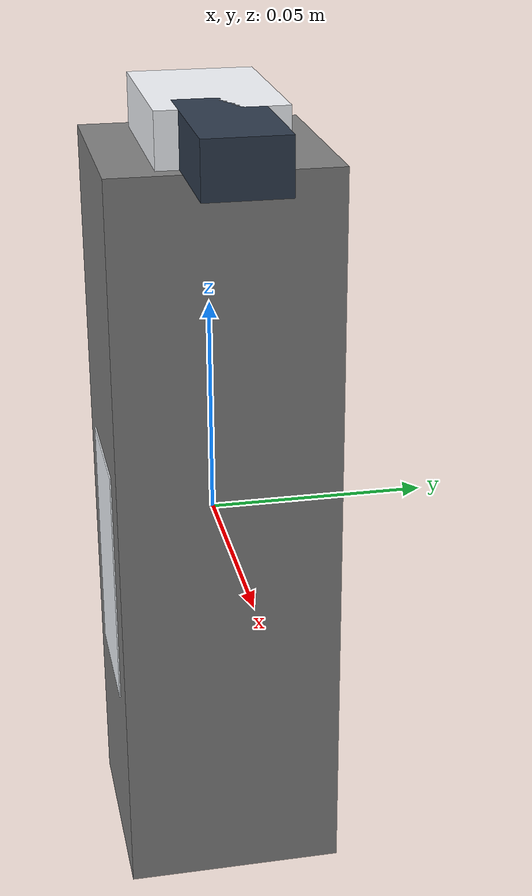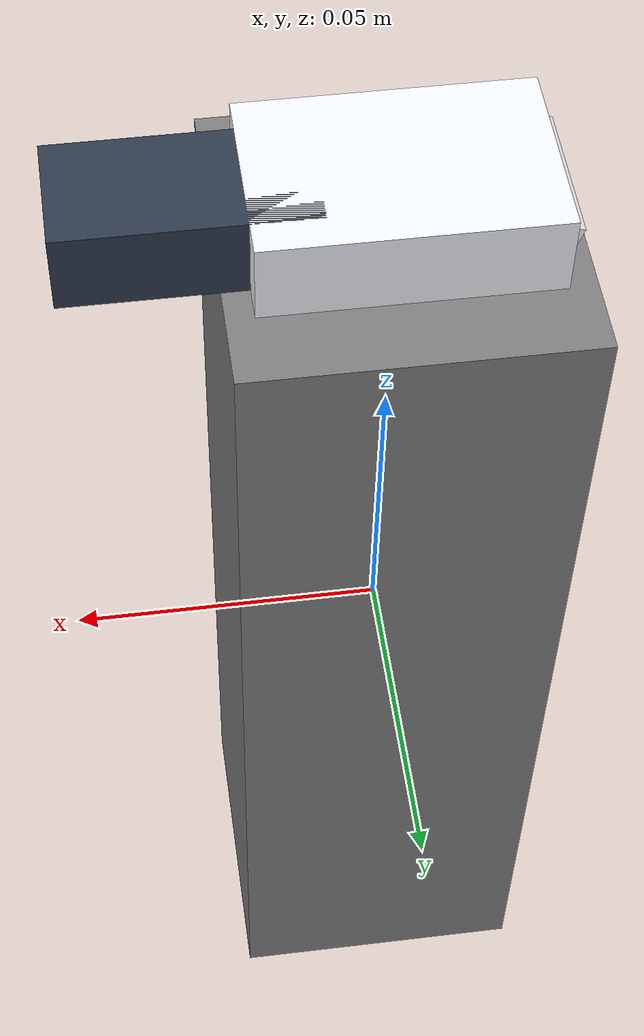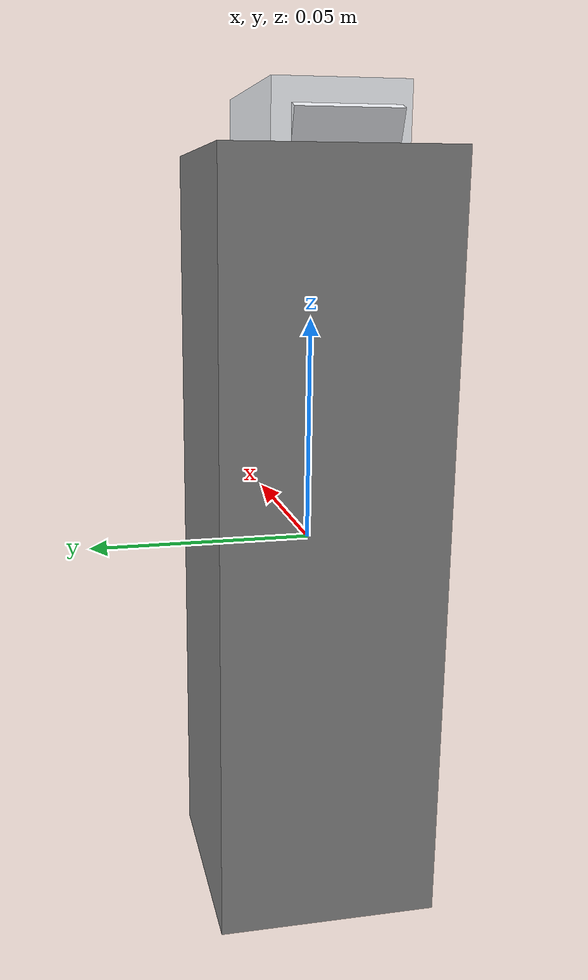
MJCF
<mujoco model="vla82_vla82_004">
  <compiler angle="radian"/>
  <asset>
    <texture name="source_texture" type="2d" file="source_texture.png"/>
    <material name="source_material" texture="source_texture" rgba="1 1 1 1"/>
  </asset>
  <default>
    <default class="visual"><geom contype="0" conaffinity="0" group="1" mass="0"/></default>
    <default class="collision"><geom contype="1" conaffinity="1" group="0" density="300" friction="0.7 0.006 0.0002" solref="0.02 1" solimp="0.9 0.95 0.001"/></default>
    <default class="region"><geom contype="0" conaffinity="0" group="1" rgba="0 1 0 0" mass="0"/></default>
  </default>
  <worldbody><body><body name="object">
    <geom name="spray_bottle_body" class="visual" type="cylinder" pos="0 0 -0.014" size="0.024 0.068" rgba="0.34 0.78 0.96 0.72"/>
    <geom name="spray_bottle_shoulder" class="visual" type="ellipsoid" pos="0 0 0.049" size="0.024 0.024 0.018" rgba="0.42 0.84 0.98 0.78"/>
    <geom name="spray_neck" class="visual" type="cylinder" pos="0 0 0.070" size="0.010 0.014" rgba="0.94 0.96 0.98 1"/>
    <geom name="spray_trigger_head" class="visual" type="box" pos="0 0 0.087" size="0.021 0.014 0.010" rgba="0.96 0.97 0.99 1"/>
    <geom name="spray_trigger" class="visual" type="box" pos="-0.013 -0.001 0.075" size="0.004 0.011 0.019" euler="0 -0.35 0" rgba="0.94 0.95 0.97 1"/>
    <geom name="spray_nozzle" class="visual" type="box" pos="0.029 0 0.091" size="0.018 0.009 0.006" rgba="0.18 0.23 0.30 1"/>
    <geom name="product_label" class="visual" type="box" pos="0 -0.0243 -0.012" size="0.015 0.001 0.028" rgba="0.96 0.98 1.00 1"/>
    <geom name="legacy_visual_mass_carrier" class="visual" type="box" size="0.025000 0.025000 0.085000" mass="0.425000000" rgba="0 0 0 0"/>
    <geom name="collision" class="collision" type="box" size="0.025000 0.025000 0.085000"/>
    <geom name="reg_bbox" class="region" type="box" pos="0 0 0" size="0.025000 0.025000 0.085000"/>
  </body></body></worldbody>
  <actuator/>
</mujoco>
